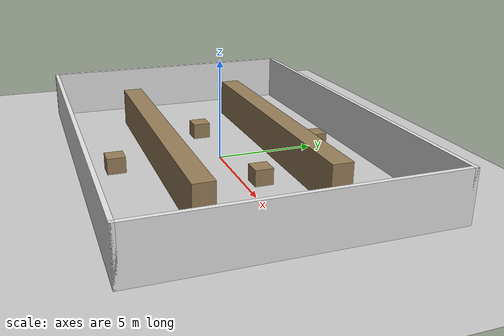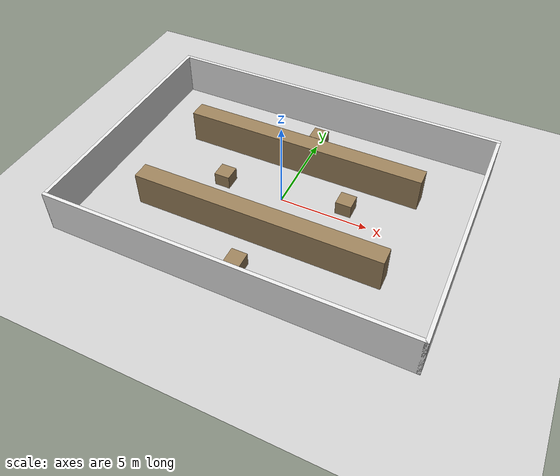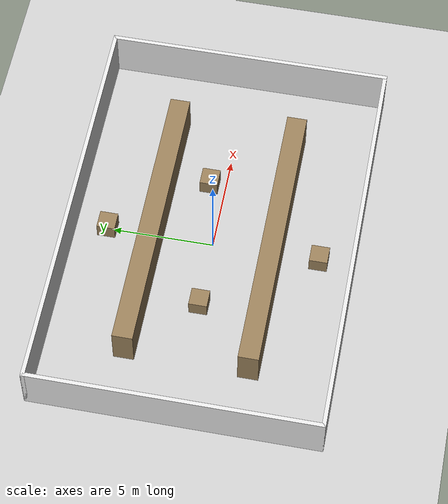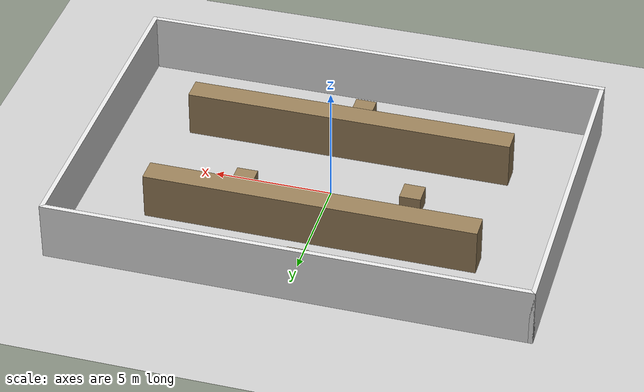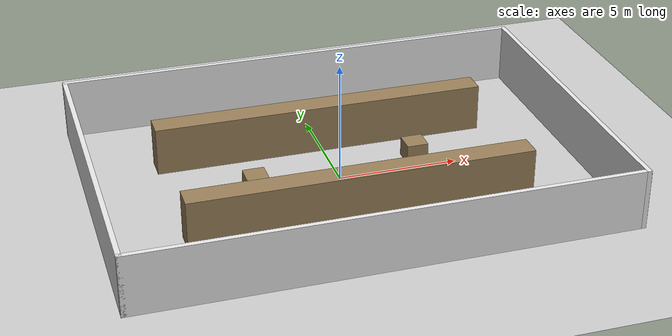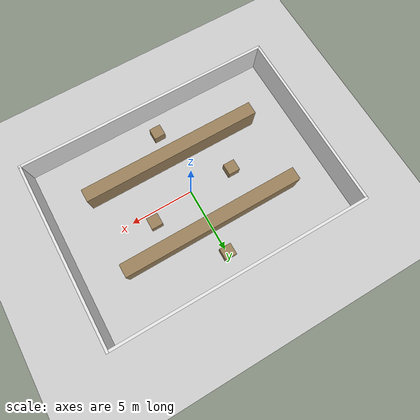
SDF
<sdf version="1.6">
 <world name="warehouse">
  <include><uri>model://sun</uri></include>
  <include><uri>model://ground_plane</uri></include>
  <scene><ambient>0.6 0.6 0.6 1</ambient><background>0.7 0.75 0.8 1</background></scene>
  <plugin name="gazebo_ros_state" filename="libgazebo_ros_state.so">
   <ros><namespace>/gazebo</namespace></ros>
   <update_rate>50.0</update_rate>
  </plugin>
  <model name="walls">
   <static>true</static>
   <link name="link">
    <collision name="wall_px_c">
     <pose>10.0 0.0 1.250 0 0 0</pose>
     <geometry><box><size>0.2 14.2 2.5</size></box></geometry>
    </collision>
    <visual name="wall_px_v">
     <pose>10.0 0.0 1.250 0 0 0</pose>
     <geometry><box><size>0.2 14.2 2.5</size></box></geometry>
     <material><ambient>0.85 0.85 0.85 1</ambient><diffuse>0.9 0.9 0.9 1</diffuse></material>
    </visual>
    <collision name="wall_nx_c">
     <pose>-10.0 0.0 1.250 0 0 0</pose>
     <geometry><box><size>0.2 14.2 2.5</size></box></geometry>
    </collision>
    <visual name="wall_nx_v">
     <pose>-10.0 0.0 1.250 0 0 0</pose>
     <geometry><box><size>0.2 14.2 2.5</size></box></geometry>
     <material><ambient>0.85 0.85 0.85 1</ambient><diffuse>0.9 0.9 0.9 1</diffuse></material>
    </visual>
    <collision name="wall_py_c">
     <pose>0.0 7.0 1.250 0 0 0</pose>
     <geometry><box><size>20.2 0.2 2.5</size></box></geometry>
    </collision>
    <visual name="wall_py_v">
     <pose>0.0 7.0 1.250 0 0 0</pose>
     <geometry><box><size>20.2 0.2 2.5</size></box></geometry>
     <material><ambient>0.85 0.85 0.85 1</ambient><diffuse>0.9 0.9 0.9 1</diffuse></material>
    </visual>
    <collision name="wall_ny_c">
     <pose>0.0 -7.0 1.250 0 0 0</pose>
     <geometry><box><size>20.2 0.2 2.5</size></box></geometry>
    </collision>
    <visual name="wall_ny_v">
     <pose>0.0 -7.0 1.250 0 0 0</pose>
     <geometry><box><size>20.2 0.2 2.5</size></box></geometry>
     <material><ambient>0.85 0.85 0.85 1</ambient><diffuse>0.9 0.9 0.9 1</diffuse></material>
    </visual>
   </link>
  </model>
  <model name="shelf_n">
   <static>true</static>
   <pose>0.0 3.0 1.000 0 0 0</pose>
   <link name="link">
    <collision name="c"><geometry><box><size>14.0 1.0 2.0</size></box></geometry></collision>
    <visual name="v">
     <geometry><box><size>14.0 1.0 2.0</size></box></geometry>
     <material><ambient>0.5 0.4 0.3 1</ambient><diffuse>0.6 0.5 0.35 1</diffuse></material>
    </visual>
   </link>
  </model>
  <model name="shelf_s">
   <static>true</static>
   <pose>0.0 -3.0 1.000 0 0 0</pose>
   <link name="link">
    <collision name="c"><geometry><box><size>14.0 1.0 2.0</size></box></geometry></collision>
    <visual name="v">
     <geometry><box><size>14.0 1.0 2.0</size></box></geometry>
     <material><ambient>0.5 0.4 0.3 1</ambient><diffuse>0.6 0.5 0.35 1</diffuse></material>
    </visual>
   </link>
  </model>
  <model name="pallet_1">
   <static>true</static>
   <pose>-3.5 0.0 0.400 0 0 0</pose>
   <link name="link">
    <collision name="c"><geometry><box><size>0.9 0.9 0.8</size></box></geometry></collision>
    <visual name="v">
     <geometry><box><size>0.9 0.9 0.8</size></box></geometry>
     <material><ambient>0.5 0.4 0.3 1</ambient><diffuse>0.6 0.5 0.35 1</diffuse></material>
    </visual>
   </link>
  </model>
  <model name="pallet_2">
   <static>true</static>
   <pose>3.5 0.8 0.400 0 0 0</pose>
   <link name="link">
    <collision name="c"><geometry><box><size>0.9 0.9 0.8</size></box></geometry></collision>
    <visual name="v">
     <geometry><box><size>0.9 0.9 0.8</size></box></geometry>
     <material><ambient>0.5 0.4 0.3 1</ambient><diffuse>0.6 0.5 0.35 1</diffuse></material>
    </visual>
   </link>
  </model>
  <model name="pallet_3">
   <static>true</static>
   <pose>0.0 5.3 0.400 0 0 0</pose>
   <link name="link">
    <collision name="c"><geometry><box><size>0.9 0.9 0.8</size></box></geometry></collision>
    <visual name="v">
     <geometry><box><size>0.9 0.9 0.8</size></box></geometry>
     <material><ambient>0.5 0.4 0.3 1</ambient><diffuse>0.6 0.5 0.35 1</diffuse></material>
    </visual>
   </link>
  </model>
  <model name="pallet_4">
   <static>true</static>
   <pose>0.0 -5.3 0.400 0 0 0</pose>
   <link name="link">
    <collision name="c"><geometry><box><size>0.9 0.9 0.8</size></box></geometry></collision>
    <visual name="v">
     <geometry><box><size>0.9 0.9 0.8</size></box></geometry>
     <material><ambient>0.5 0.4 0.3 1</ambient><diffuse>0.6 0.5 0.35 1</diffuse></material>
    </visual>
   </link>
  </model>
 </world>
</sdf>
